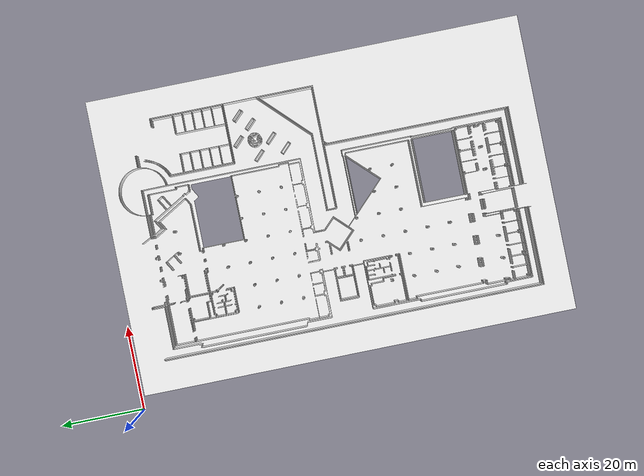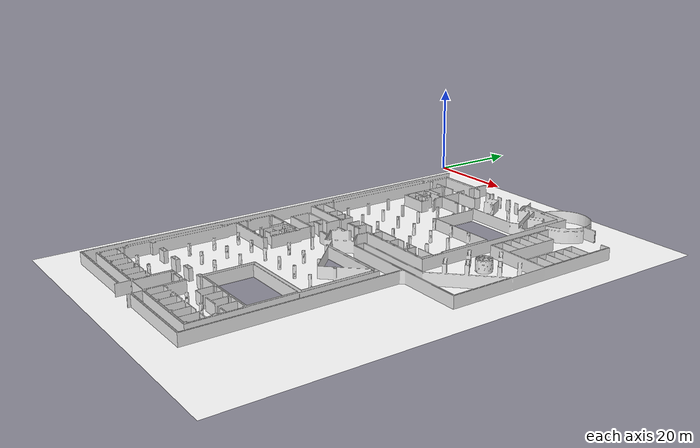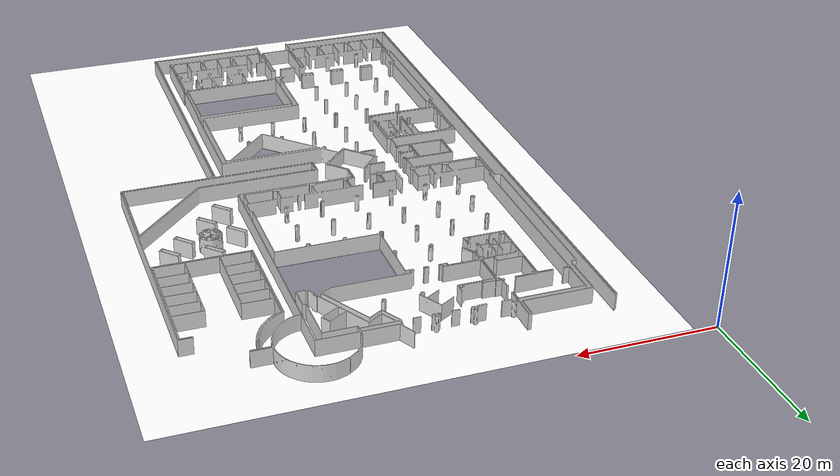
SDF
<?xml version='1.0' encoding='utf-8'?>
<sdf version="1.7">
  <model name="biblioteca_L2_entrada">
    <static>true</static>
    <link name="floor_1">
      <visual name="visual">
        <geometry>
          <mesh>
            <uri>model://biblioteca_L2_entrada/meshes/floor_1.obj</uri>
          </mesh>
        </geometry>
        <material>
          <diffuse>1.0 1.0 1.0</diffuse>
          <specular>0.1 0.1 0.1</specular>
          <pbr>
            <metal>
              <metalness>0.0</metalness>
              <albedo_map>model://biblioteca_L2_entrada/meshes/blue_linoleum.png</albedo_map>
            </metal>
          </pbr>
          <script>
            <uri>model://biblioteca_L2_entrada/meshes/</uri>
            <name>floor_1_Diffuse</name>
          </script>
        </material>
      </visual>
      <collision name="collision">
        <geometry>
          <mesh>
            <uri>model://biblioteca_L2_entrada/meshes/floor_1.obj</uri>
          </mesh>
        </geometry>
        <surface>
          <contact>
            <collide_bitmask>0x01</collide_bitmask>
          </contact>
        </surface>
      </collision>
    </link>
    <link name="wall_1">
      <visual name="wall_1">
        <geometry>
          <mesh>
            <uri>model://biblioteca_L2_entrada/meshes/wall_1.obj</uri>
          </mesh>
        </geometry>
        <transparency>0.0</transparency>
        <material>
          <diffuse>1.0 1.0 1.0</diffuse>
          <specular>0.1 0.1 0.1</specular>
          <pbr>
            <metal>
              <metalness>0.0</metalness>
              <albedo_map>model://biblioteca_L2_entrada/meshes/default.png</albedo_map>
            </metal>
          </pbr>
          <script>
            <uri>model://biblioteca_L2_entrada/meshes/</uri>
            <name>wall_1_Diffuse</name>
          </script>
        </material>
      </visual>
      <collision name="collision">
        <geometry>
          <mesh>
            <uri>model://biblioteca_L2_entrada/meshes/wall_1.obj</uri>
          </mesh>
        </geometry>
        <surface>
          <contact>
            <collide_bitmask>0x01</collide_bitmask>
          </contact>
        </surface>
      </collision>
      <pose>10.569960835465976 -99.14916610192566 0 0 0 0</pose>
    </link>
  </model>
</sdf>
